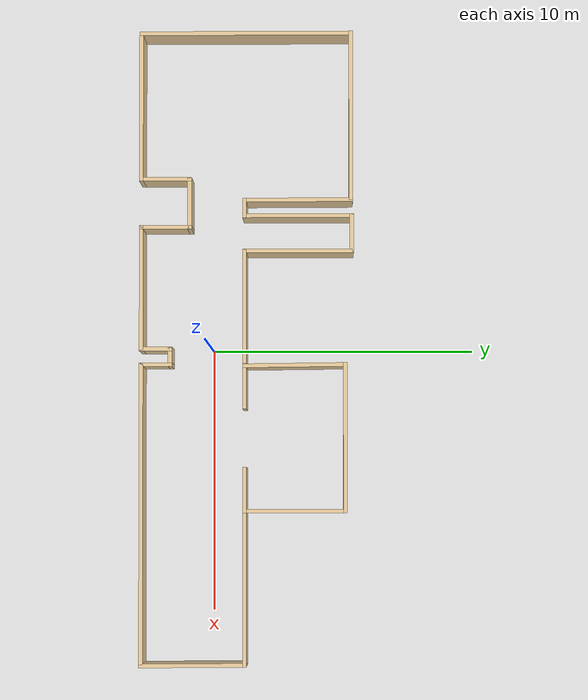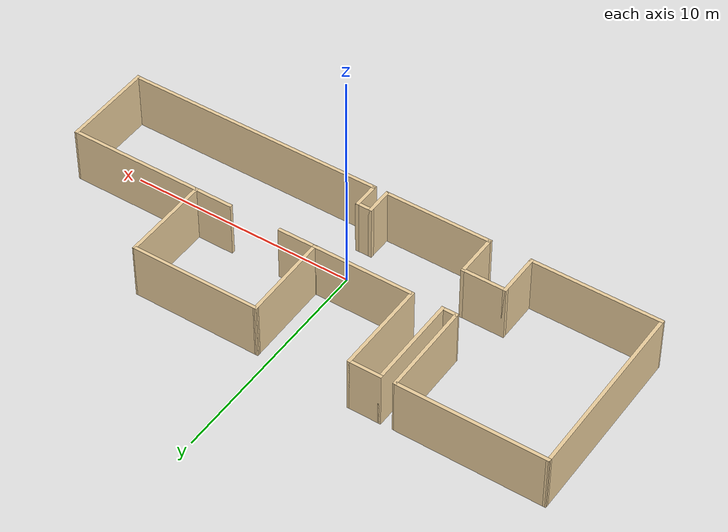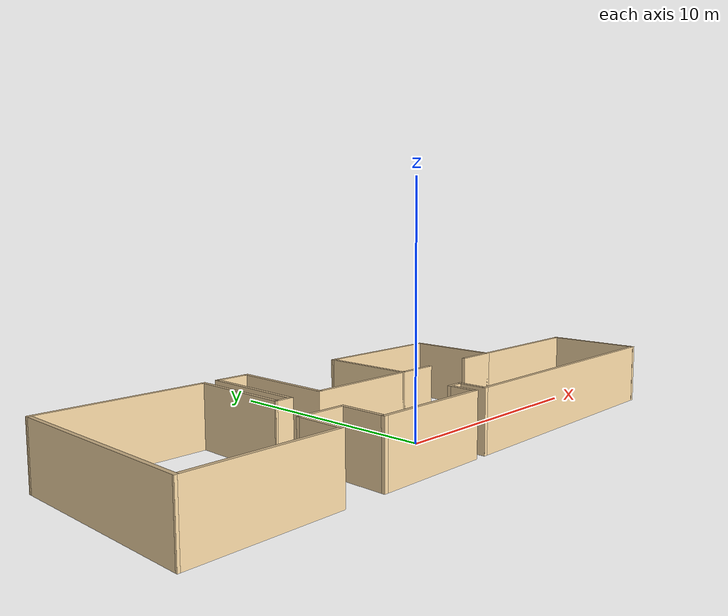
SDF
<?xml version='1.0'?>
<sdf version='1.7'>
  <model name='ignc'>
    <pose>-0.02809 1.29391 0 0 -0 0</pose>
    <link name='Wall_10'>
      <collision name='Wall_10_Collision'>
        <geometry>
          <box>
            <size>4 0.15 2.5</size>
          </box>
        </geometry>
        <pose>0 0 1.25 0 -0 0</pose>
      </collision>
      <visual name='Wall_10_Visual'>
        <pose>0 0 1.25 0 -0 0</pose>
        <geometry>
          <box>
            <size>4 0.15 2.5</size>
          </box>
        </geometry>
        <material>
          <script>
            <uri>file://media/materials/scripts/gazebo.material</uri>
            <name>Gazebo/Grey</name>
          </script>
          <ambient>0.921569 0.807843 0.615686 1</ambient>
        </material>
        <meta>
          <layer>0</layer>
        </meta>
      </visual>
      <pose>0.653337 1.85324 0 0 -0 1.58281</pose>
    </link>
    <link name='Wall_12'>
      <collision name='Wall_12_Collision'>
        <geometry>
          <box>
            <size>5.75 0.15 2.5</size>
          </box>
        </geometry>
        <pose>0 0 1.25 0 -0 0</pose>
      </collision>
      <visual name='Wall_12_Visual'>
        <pose>0 0 1.25 0 -0 0</pose>
        <geometry>
          <box>
            <size>5.75 0.15 2.5</size>
          </box>
        </geometry>
        <material>
          <script>
            <uri>file://media/materials/scripts/gazebo.material</uri>
            <name>Gazebo/Grey</name>
          </script>
          <ambient>0.921569 0.807843 0.615686 1</ambient>
        </material>
        <meta>
          <layer>0</layer>
        </meta>
      </visual>
      <pose>3.43021 3.77824 0 0 -0 0</pose>
    </link>
    <link name='Wall_18'>
      <collision name='Wall_18_Collision'>
        <geometry>
          <box>
            <size>11.5 0.15 2.5</size>
          </box>
        </geometry>
        <pose>0 0 1.25 0 -0 0</pose>
      </collision>
      <visual name='Wall_18_Visual'>
        <pose>0 0 1.25 0 -0 0</pose>
        <geometry>
          <box>
            <size>11.5 0.15 2.5</size>
          </box>
        </geometry>
        <material>
          <script>
            <uri>file://media/materials/scripts/gazebo.material</uri>
            <name>Gazebo/Grey</name>
          </script>
          <ambient>0.921569 0.807843 0.615686 1</ambient>
        </material>
        <meta>
          <layer>0</layer>
        </meta>
      </visual>
      <pose>6.30521 -4.02176 0 0 -0 3.14159</pose>
    </link>
    <link name='Wall_20'>
      <collision name='Wall_20_Collision'>
        <geometry>
          <box>
            <size>1.25 0.15 2.5</size>
          </box>
        </geometry>
        <pose>0 0 1.25 0 -0 0</pose>
      </collision>
      <visual name='Wall_20_Visual'>
        <pose>0 0 1.25 0 -0 0</pose>
        <geometry>
          <box>
            <size>1.25 0.15 2.5</size>
          </box>
        </geometry>
        <material>
          <script>
            <uri>file://media/materials/scripts/gazebo.material</uri>
            <name>Gazebo/Grey</name>
          </script>
          <ambient>0.921569 0.807843 0.615686 1</ambient>
        </material>
        <meta>
          <layer>0</layer>
        </meta>
      </visual>
      <pose>0.630206 -3.47176 0 0 -0 1.5708</pose>
    </link>
    <link name='Wall_21'>
      <collision name='Wall_21_Collision'>
        <geometry>
          <box>
            <size>0.75 0.15 2.5</size>
          </box>
        </geometry>
        <pose>0 0 1.25 0 -0 0</pose>
      </collision>
      <visual name='Wall_21_Visual'>
        <pose>0 0 1.25 0 -0 0</pose>
        <geometry>
          <box>
            <size>0.75 0.15 2.5</size>
          </box>
        </geometry>
        <material>
          <script>
            <uri>file://media/materials/scripts/gazebo.material</uri>
            <name>Gazebo/Grey</name>
          </script>
          <ambient>0.921569 0.807843 0.615686 1</ambient>
        </material>
        <meta>
          <layer>0</layer>
        </meta>
      </visual>
      <pose>0.330206 -2.92176 0 0 -0 3.14159</pose>
    </link>
    <link name='Wall_22'>
      <collision name='Wall_22_Collision'>
        <geometry>
          <box>
            <size>1.25 0.15 2.5</size>
          </box>
        </geometry>
        <pose>0 0 1.25 0 -0 0</pose>
      </collision>
      <visual name='Wall_22_Visual'>
        <pose>0 0 1.25 0 -0 0</pose>
        <geometry>
          <box>
            <size>1.25 0.15 2.5</size>
          </box>
        </geometry>
        <material>
          <script>
            <uri>file://media/materials/scripts/gazebo.material</uri>
            <name>Gazebo/Grey</name>
          </script>
          <ambient>0.921569 0.807843 0.615686 1</ambient>
        </material>
        <meta>
          <layer>0</layer>
        </meta>
      </visual>
      <pose>0.030206 -3.47176 0 0 -0 -1.5708</pose>
    </link>
    <link name='Wall_23'>
      <collision name='Wall_23_Collision'>
        <geometry>
          <box>
            <size>4.81118 0.15 2.5</size>
          </box>
        </geometry>
        <pose>0 0 1.25 0 -0 0</pose>
      </collision>
      <visual name='Wall_23_Visual'>
        <pose>0 0 1.25 0 -0 0</pose>
        <geometry>
          <box>
            <size>4.81118 0.15 2.5</size>
          </box>
        </geometry>
        <material>
          <script>
            <uri>file://media/materials/scripts/gazebo.material</uri>
            <name>Gazebo/Grey</name>
          </script>
          <ambient>0.921569 0.807843 0.615686 1</ambient>
        </material>
        <meta>
          <layer>0</layer>
        </meta>
      </visual>
      <pose>-2.30038 -4.02176 0 0 -0 3.14159</pose>
    </link>
    <link name='Wall_38'>
      <collision name='Wall_38_Collision'>
        <geometry>
          <box>
            <size>1.75 0.15 2.5</size>
          </box>
        </geometry>
        <pose>0 0 1.25 0 -0 0</pose>
      </collision>
      <visual name='Wall_38_Visual'>
        <pose>0 0 1.25 0 -0 0</pose>
        <geometry>
          <box>
            <size>1.75 0.15 2.5</size>
          </box>
        </geometry>
        <material>
          <script>
            <uri>file://media/materials/scripts/gazebo.material</uri>
            <name>Gazebo/Grey</name>
          </script>
          <ambient>0.921569 0.807843 0.615686 1</ambient>
        </material>
        <meta>
          <layer>0</layer>
        </meta>
      </visual>
      <pose>1.45334 -0.071761 0 0 -0 0</pose>
    </link>
    <link name='Wall_4'>
      <collision name='Wall_4_Collision'>
        <geometry>
          <box>
            <size>4.20982 0.15 2.5</size>
          </box>
        </geometry>
        <pose>0 0 1.25 0 -0 0</pose>
      </collision>
      <visual name='Wall_4_Visual'>
        <pose>0 0 1.25 0 -0 0</pose>
        <geometry>
          <box>
            <size>4.20982 0.15 2.5</size>
          </box>
        </geometry>
        <material>
          <script>
            <uri>file://media/materials/scripts/gazebo.material</uri>
            <name>Gazebo/Grey</name>
          </script>
          <ambient>0.921569 0.807843 0.615686 1</ambient>
        </material>
        <meta>
          <layer>0</layer>
        </meta>
      </visual>
      <pose>-5.67985 1.95812 0 0 -0 -1.56584</pose>
    </link>
    <link name='Wall_40'>
      <collision name='Wall_40_Collision'>
        <geometry>
          <box>
            <size>4 0.15 2.5</size>
          </box>
        </geometry>
        <pose>0 0 1.25 0 -0 0</pose>
      </collision>
      <visual name='Wall_40_Visual'>
        <pose>0 0 1.25 0 -0 0</pose>
        <geometry>
          <box>
            <size>4 0.15 2.5</size>
          </box>
        </geometry>
        <material>
          <script>
            <uri>file://media/materials/scripts/gazebo.material</uri>
            <name>Gazebo/Grey</name>
          </script>
          <ambient>0.921569 0.807843 0.615686 1</ambient>
        </material>
        <meta>
          <layer>0</layer>
        </meta>
      </visual>
      <pose>6.23021 1.85324 0 0 -0 -1.5708</pose>
    </link>
    <link name='Wall_43'>
      <collision name='Wall_43_Collision'>
        <geometry>
          <box>
            <size>1.75 0.15 2.5</size>
          </box>
        </geometry>
        <pose>0 0 1.25 0 -0 0</pose>
      </collision>
      <visual name='Wall_43_Visual'>
        <pose>0 0 1.25 0 -0 0</pose>
        <geometry>
          <box>
            <size>1.75 0.15 2.5</size>
          </box>
        </geometry>
        <material>
          <script>
            <uri>file://media/materials/scripts/gazebo.material</uri>
            <name>Gazebo/Grey</name>
          </script>
          <ambient>0.921569 0.807843 0.615686 1</ambient>
        </material>
        <meta>
          <layer>0</layer>
        </meta>
      </visual>
      <pose>5.43021 -0.071761 0 0 -0 3.14159</pose>
    </link>
    <link name='Wall_46'>
      <collision name='Wall_46_Collision'>
        <geometry>
          <box>
            <size>6 0.15 2.5</size>
          </box>
        </geometry>
        <pose>0 0 1.25 0 -0 0</pose>
      </collision>
      <visual name='Wall_46_Visual'>
        <pose>0 0 1.25 0 -0 0</pose>
        <geometry>
          <box>
            <size>6 0.15 2.5</size>
          </box>
        </geometry>
        <material>
          <script>
            <uri>file://media/materials/scripts/gazebo.material</uri>
            <name>Gazebo/Grey</name>
          </script>
          <ambient>0.921569 0.807843 0.615686 1</ambient>
        </material>
        <meta>
          <layer>0</layer>
        </meta>
      </visual>
      <pose>9.15521 -0.071761 0 0 -0 0</pose>
    </link>
    <link name='Wall_5'>
      <collision name='Wall_5_Collision'>
        <geometry>
          <box>
            <size>0.75 0.15 2.5</size>
          </box>
        </geometry>
        <pose>0 0 1.25 0 -0 0</pose>
      </collision>
      <visual name='Wall_5_Visual'>
        <pose>0 0 1.25 0 -0 0</pose>
        <geometry>
          <box>
            <size>0.75 0.15 2.5</size>
          </box>
        </geometry>
        <material>
          <script>
            <uri>file://media/materials/scripts/gazebo.material</uri>
            <name>Gazebo/Grey</name>
          </script>
          <ambient>0.921569 0.807843 0.615686 1</ambient>
        </material>
        <meta>
          <layer>0</layer>
        </meta>
      </visual>
      <pose>-5.36979 -0.071761 0 0 -0 0</pose>
    </link>
    <link name='Wall_56'>
      <collision name='Wall_56_Collision'>
        <geometry>
          <box>
            <size>4.10614 0.15 2.5</size>
          </box>
        </geometry>
        <pose>0 0 1.25 0 -0 0</pose>
      </collision>
      <visual name='Wall_56_Visual'>
        <pose>0 0 1.25 0 -0 0</pose>
        <geometry>
          <box>
            <size>4.10614 0.15 2.5</size>
          </box>
        </geometry>
        <material>
          <script>
            <uri>file://media/materials/scripts/gazebo.material</uri>
            <name>Gazebo/Grey</name>
          </script>
          <ambient>0.921569 0.807843 0.615686 1</ambient>
        </material>
        <meta>
          <layer>0</layer>
        </meta>
      </visual>
      <pose>12.0905 -2.04981 0 0 -0 -1.56557</pose>
    </link>
    <link name='Wall_6'>
      <collision name='Wall_6_Collision'>
        <geometry>
          <box>
            <size>4.25 0.15 2.5</size>
          </box>
        </geometry>
        <pose>0 0 1.25 0 -0 0</pose>
      </collision>
      <visual name='Wall_6_Visual'>
        <pose>0 0 1.25 0 -0 0</pose>
        <geometry>
          <box>
            <size>4.25 0.15 2.5</size>
          </box>
        </geometry>
        <material>
          <script>
            <uri>file://media/materials/scripts/gazebo.material</uri>
            <name>Gazebo/Grey</name>
          </script>
          <ambient>0.921569 0.807843 0.615686 1</ambient>
        </material>
        <meta>
          <layer>0</layer>
        </meta>
      </visual>
      <pose>-5.06979 1.97824 0 0 -0 1.5708</pose>
    </link>
    <link name='Wall_68'>
      <collision name='Wall_68_Collision'>
        <geometry>
          <box>
            <size>2 0.15 2.5</size>
          </box>
        </geometry>
        <pose>0 0 1.25 0 -0 0</pose>
      </collision>
      <visual name='Wall_68_Visual'>
        <pose>0 0 1.25 0 -0 0</pose>
        <geometry>
          <box>
            <size>2 0.15 2.5</size>
          </box>
        </geometry>
        <material>
          <script>
            <uri>file://media/materials/scripts/gazebo.material</uri>
            <name>Gazebo/Grey</name>
          </script>
          <ambient>0.921569 0.807843 0.615686 1</ambient>
        </material>
        <meta>
          <layer>0</layer>
        </meta>
      </visual>
      <pose>-4.63097 -3.09676 0 0 -0 1.5708</pose>
    </link>
    <link name='Wall_69'>
      <collision name='Wall_69_Collision'>
        <geometry>
          <box>
            <size>2 0.15 2.5</size>
          </box>
        </geometry>
        <pose>0 0 1.25 0 -0 0</pose>
      </collision>
      <visual name='Wall_69_Visual'>
        <pose>0 0 1.25 0 -0 0</pose>
        <geometry>
          <box>
            <size>2 0.15 2.5</size>
          </box>
        </geometry>
        <material>
          <script>
            <uri>file://media/materials/scripts/gazebo.material</uri>
            <name>Gazebo/Grey</name>
          </script>
          <ambient>0.921569 0.807843 0.615686 1</ambient>
        </material>
        <meta>
          <layer>0</layer>
        </meta>
      </visual>
      <pose>-5.55597 -2.17176 0 0 -0 3.14159</pose>
    </link>
    <link name='Wall_7'>
      <collision name='Wall_7_Collision'>
        <geometry>
          <box>
            <size>1.5 0.15 2.5</size>
          </box>
        </geometry>
        <pose>0 0 1.25 0 -0 0</pose>
      </collision>
      <visual name='Wall_7_Visual'>
        <pose>0 0 1.25 0 -0 0</pose>
        <geometry>
          <box>
            <size>1.5 0.15 2.5</size>
          </box>
        </geometry>
        <material>
          <script>
            <uri>file://media/materials/scripts/gazebo.material</uri>
            <name>Gazebo/Grey</name>
          </script>
          <ambient>0.921569 0.807843 0.615686 1</ambient>
        </material>
        <meta>
          <layer>0</layer>
        </meta>
      </visual>
      <pose>-4.39479 4.02824 0 0 -0 0</pose>
    </link>
    <link name='Wall_70'>
      <collision name='Wall_70_Collision'>
        <geometry>
          <box>
            <size>2 0.15 2.5</size>
          </box>
        </geometry>
        <pose>0 0 1.25 0 -0 0</pose>
      </collision>
      <visual name='Wall_70_Visual'>
        <pose>0 0 1.25 0 -0 0</pose>
        <geometry>
          <box>
            <size>2 0.15 2.5</size>
          </box>
        </geometry>
        <material>
          <script>
            <uri>file://media/materials/scripts/gazebo.material</uri>
            <name>Gazebo/Grey</name>
          </script>
          <ambient>0.921569 0.807843 0.615686 1</ambient>
        </material>
        <meta>
          <layer>0</layer>
        </meta>
      </visual>
      <pose>-6.48097 -3.09676 0 0 -0 -1.5708</pose>
    </link>
    <link name='Wall_71'>
      <collision name='Wall_71_Collision'>
        <geometry>
          <box>
            <size>5.75 0.15 2.5</size>
          </box>
        </geometry>
        <pose>0 0 1.25 0 -0 0</pose>
      </collision>
      <visual name='Wall_71_Visual'>
        <pose>0 0 1.25 0 -0 0</pose>
        <geometry>
          <box>
            <size>5.75 0.15 2.5</size>
          </box>
        </geometry>
        <material>
          <script>
            <uri>file://media/materials/scripts/gazebo.material</uri>
            <name>Gazebo/Grey</name>
          </script>
          <ambient>0.921569 0.807843 0.615686 1</ambient>
        </material>
        <meta>
          <layer>0</layer>
        </meta>
      </visual>
      <pose>-9.28097 -4.02176 0 0 -0 3.14159</pose>
    </link>
    <link name='Wall_76'>
      <collision name='Wall_76_Collision'>
        <geometry>
          <box>
            <size>8.16965 0.15 2.5</size>
          </box>
        </geometry>
        <pose>0 0 1.25 0 -0 0</pose>
      </collision>
      <visual name='Wall_76_Visual'>
        <pose>0 0 1.25 0 -0 0</pose>
        <geometry>
          <box>
            <size>8.16965 0.15 2.5</size>
          </box>
        </geometry>
        <material>
          <script>
            <uri>file://media/materials/scripts/gazebo.material</uri>
            <name>Gazebo/Grey</name>
          </script>
          <ambient>0.921569 0.807843 0.615686 1</ambient>
        </material>
        <meta>
          <layer>0</layer>
        </meta>
      </visual>
      <pose>-12.091 -0.011989 0 0 -0 1.5733</pose>
    </link>
    <link name='Wall_79'>
      <collision name='Wall_79_Collision'>
        <geometry>
          <box>
            <size>6.5 0.15 2.5</size>
          </box>
        </geometry>
        <pose>0 0 1.25 0 -0 0</pose>
      </collision>
      <visual name='Wall_79_Visual'>
        <pose>0 0 1.25 0 -0 0</pose>
        <geometry>
          <box>
            <size>6.5 0.15 2.5</size>
          </box>
        </geometry>
        <material>
          <script>
            <uri>file://media/materials/scripts/gazebo.material</uri>
            <name>Gazebo/Grey</name>
          </script>
          <ambient>0.921569 0.807843 0.615686 1</ambient>
        </material>
        <meta>
          <layer>0</layer>
        </meta>
      </visual>
      <pose>-8.92609 3.99778 0 0 -0 0</pose>
    </link>
    <link name='Wall_8'>
      <collision name='Wall_8_Collision'>
        <geometry>
          <box>
            <size>4.25 0.15 2.5</size>
          </box>
        </geometry>
        <pose>0 0 1.25 0 -0 0</pose>
      </collision>
      <visual name='Wall_8_Visual'>
        <pose>0 0 1.25 0 -0 0</pose>
        <geometry>
          <box>
            <size>4.25 0.15 2.5</size>
          </box>
        </geometry>
        <material>
          <script>
            <uri>file://media/materials/scripts/gazebo.material</uri>
            <name>Gazebo/Grey</name>
          </script>
          <ambient>0.921569 0.807843 0.615686 1</ambient>
        </material>
        <meta>
          <layer>0</layer>
        </meta>
      </visual>
      <pose>-3.71979 1.97824 0 0 -0 -1.5708</pose>
    </link>
    <link name='Wall_9'>
      <collision name='Wall_9_Collision'>
        <geometry>
          <box>
            <size>4.54626 0.15 2.5</size>
          </box>
        </geometry>
        <pose>0 0 1.25 0 -0 0</pose>
      </collision>
      <visual name='Wall_9_Visual'>
        <pose>0 0 1.25 0 -0 0</pose>
        <geometry>
          <box>
            <size>4.54626 0.15 2.5</size>
          </box>
        </geometry>
        <material>
          <script>
            <uri>file://media/materials/scripts/gazebo.material</uri>
            <name>Gazebo/Grey</name>
          </script>
          <ambient>0.921569 0.807843 0.615686 1</ambient>
        </material>
        <meta>
          <layer>0</layer>
        </meta>
      </visual>
      <pose>-1.52166 -0.071761 0 0 -0 0</pose>
    </link>
    <static>1</static>
  </model>
</sdf>
